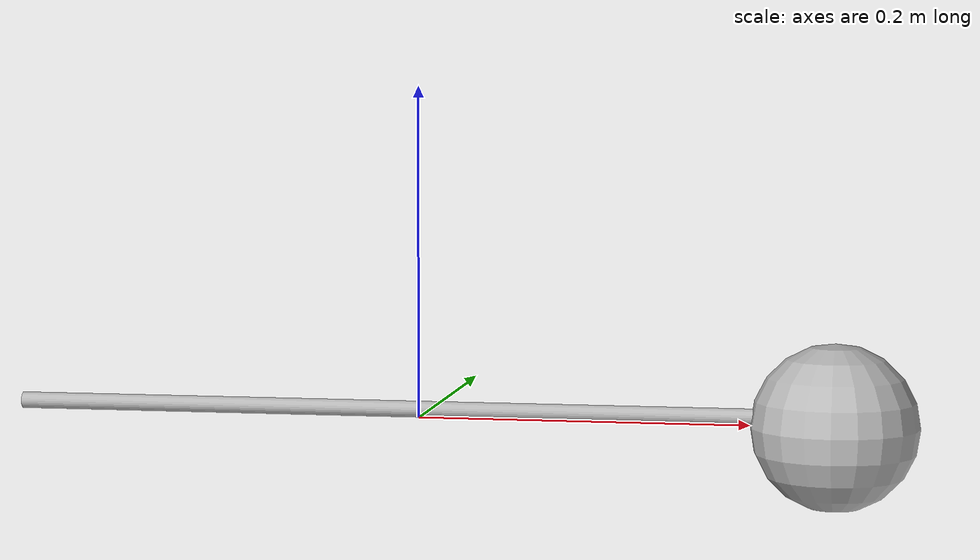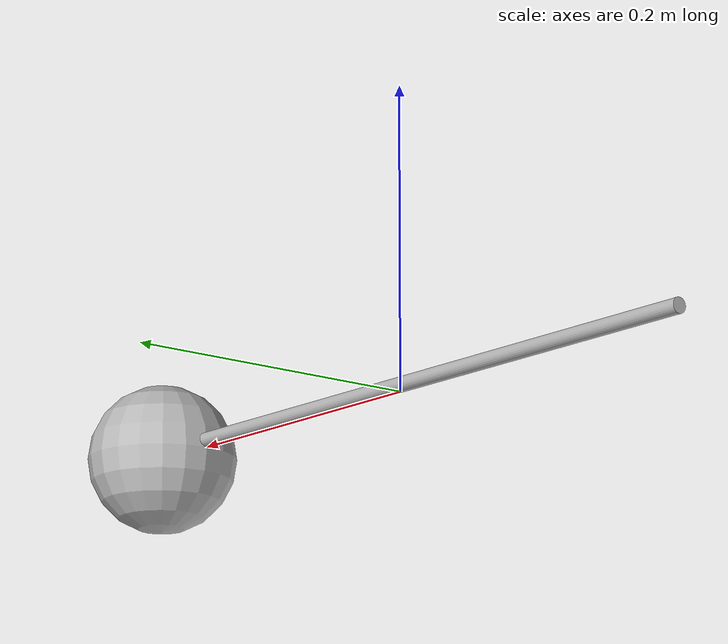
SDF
<?xml version='1.0'?>
<sdf version='1.5'>
  <model name="payload">
        <static>true</static>

	      <link name="payload_link">
        <pose>0.0 0.0 0.005 0 1.57 0</pose>
	<gravity>1</gravity>
		 <inertial>
          <inertia>
            <ixx>0.005</ixx>
            <ixy>0</ixy>
            <ixz>0</ixz>
            <iyy>0.005</iyy>
            <iyz>0</iyz>
            <izz>0.00001</izz>
          </inertia>
          <mass>0.03</mass>
        </inertial>
        <collision name="collision_payload_link">
          <geometry>
            <cylinder>
              <radius>0.0005</radius>
              <length>0.5</length>
            </cylinder>
          </geometry>
	  <surface>
	    <contact>
		<collide_without_contact>false</collide_without_contact>
		<ode>
		  <kp>0.05</kp>
		  <kd>0.05</kd>
		</ode>
	    </contact>
	    <friction>
		<torsional>
		  <coefficient>0.1</coefficient>
		</torsional>
		<ode>
		  <mu>0.1</mu>
		</ode>
	    </friction>
	  </surface>
        </collision>
        <visual name="visual_payload_link">
          <geometry>
            <cylinder>
              <radius>0.005</radius>
              <length>0.5</length>
            </cylinder>
          </geometry>
        </visual>
      </link>

      <link name="payload">
        <pose>0.25 0.0 0.0 0 0.0 0.0</pose>
	<gravity>1</gravity>
	<sensor type="imu" name="payload_imu">
		<always_on>true</always_on>
		<update_rate>200</update_rate>
	</sensor>

		 <inertial>
          <inertia>
            <ixx>0.15</ixx>
            <ixy>0</ixy>
            <ixz>0</ixz>
            <iyy>0.15</iyy>
            <iyz>0</iyz>
            <izz>0.000075</izz>
          </inertia>
          <mass>0.6</mass>
        </inertial>
        <collision name='caster_collision'>
            <geometry>
              <sphere>
              <radius>.05</radius>
            </sphere>
          </geometry>

          <surface>
            <friction>
              <ode>
                <mu>0</mu>
                <mu2>0</mu2>
                <slip1>0.0</slip1>
                <slip2>0.0</slip2>
              </ode>
            </friction>
          </surface>
        </collision>

        <visual name='caster_visual'>
          <geometry>
            <sphere>
              <radius>.05</radius>
            </sphere>
          </geometry>
        </visual>
      </link>
	<plugin name="imu_plugin_payload" filename="libgazebo_ros_imu.so">
      <alwaysOn>true</alwaysOn>
      <bodyName>payload</bodyName>
      <topicName>/sim_payload_imu</topicName>
      <serviceName>imu_service</serviceName>
      <gaussianNoise>0.0</gaussianNoise>
      <updateRate>200.0</updateRate>
    </plugin>

    <joint name="payload_link_joint" type="fixed">
      <parent>payload_link</parent>
      <child>payload</child>
      <pose>0.25 0.0 0.0 0 0.0 0.0</pose>
    </joint>

  </model>
</sdf>
